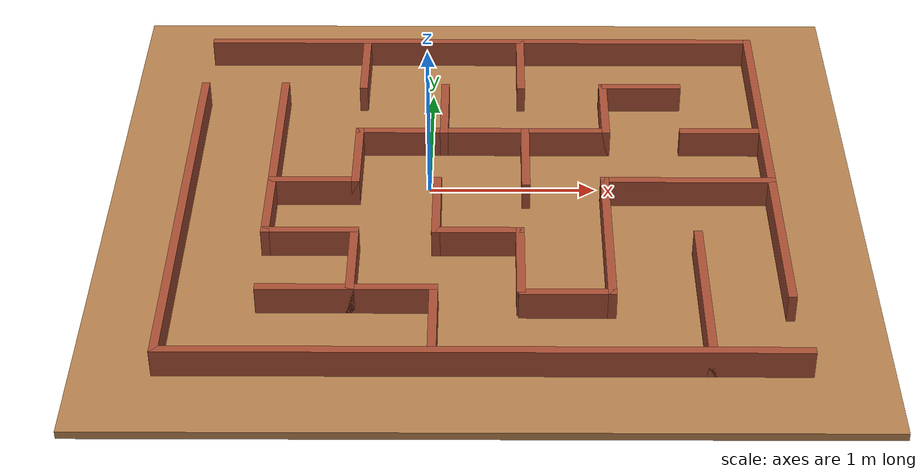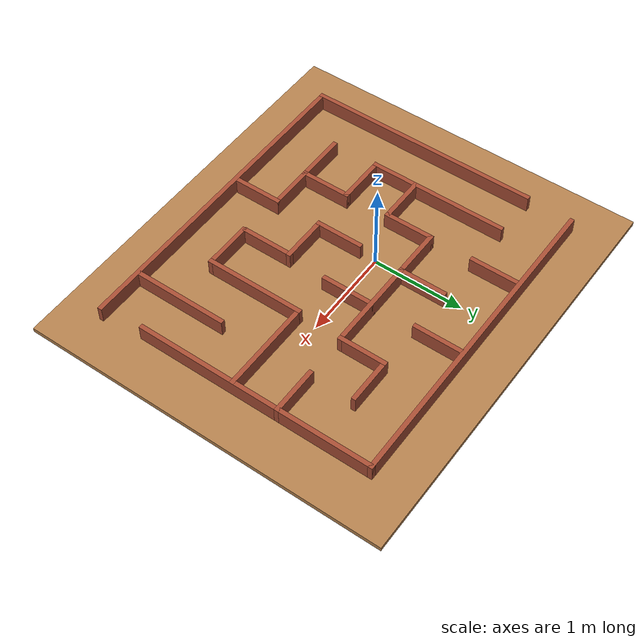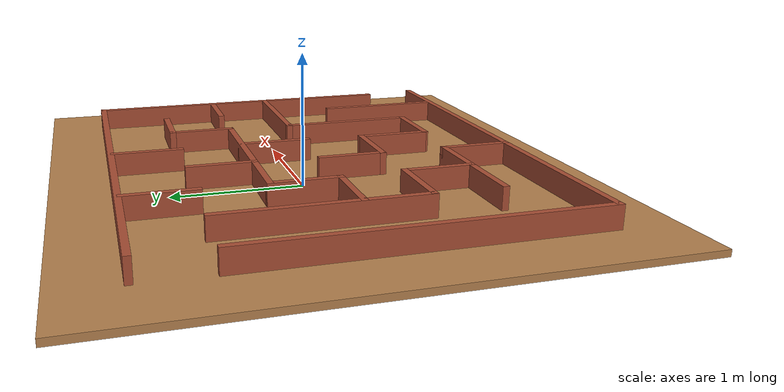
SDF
<?xml version='1.0'?>
<sdf version='1.6'>
  <model name='maze2'>
    <pose frame=''>0.325 -0.165 0 0 -0 0</pose>
    <link name='ground_link'>
      <collision name='ground_collision'>
        <geometry>
          <box>
            <size>4.5 4 0.05</size>
          </box>
        </geometry>
        <surface>
          <friction>
            <ode>
              <mu>100</mu>
              <mu2>50</mu2>
            </ode>
          </friction>
        </surface>
      </collision>
      <visual name='ground_visual'>
        <geometry>
          <box>
            <size>4.5 4 0.05</size>
          </box>
        </geometry>
        <material>
          <script>
            <uri>file://media/materials/scripts/gazebo.material</uri>
            <name>Gazebo/Wood</name>
          </script>
        </material>
      </visual>
    </link>
    <link name='Wall_0'>
      <collision name='Wall_0_Collision'>
        <geometry>
          <box>
            <size>3.53 0.05 0.2</size>
          </box>
        </geometry>
        <pose frame=''>0 0 0.1 0 -0 0</pose>
      </collision>
      <visual name='Wall_0_Visual'>
        <pose frame=''>0 0 0.1 0 -0 0</pose>
        <geometry>
          <box>
            <size>3.53 0.05 0.2</size>
          </box>
        </geometry>
        <material>
          <script>
            <uri>file://media/materials/scripts/gazebo.material</uri>
            <name>Gazebo/Bricks</name>
          </script>
          <ambient>1 1 1 1</ambient>
        </material>
        <meta>
          <layer>0</layer>
        </meta>
      </visual>
      <pose frame=''>-0.015 1.535 0 0 -0 0</pose>
    </link>
    <link name='Wall_10'>
      <collision name='Wall_10_Collision'>
        <geometry>
          <box>
            <size>0.57 0.05 0.2</size>
          </box>
        </geometry>
        <pose frame=''>0 0 0.1 0 -0 0</pose>
      </collision>
      <visual name='Wall_10_Visual'>
        <pose frame=''>0 0 0.1 0 -0 0</pose>
        <geometry>
          <box>
            <size>0.57 0.05 0.2</size>
          </box>
        </geometry>
        <material>
          <script>
            <uri>file://media/materials/scripts/gazebo.material</uri>
            <name>Gazebo/Bricks</name>
          </script>
          <ambient>1 1 1 1</ambient>
        </material>
        <meta>
          <layer>0</layer>
        </meta>
      </visual>
      <pose frame=''>-0.745 -0.745 0 0 -0 -1.5708</pose>
    </link>
    <link name='Wall_11'>
      <collision name='Wall_11_Collision'>
        <geometry>
          <box>
            <size>0.52 0.05 0.2</size>
          </box>
        </geometry>
        <pose frame=''>0 0 0.1 0 -0 0</pose>
      </collision>
      <visual name='Wall_11_Visual'>
        <pose frame=''>0 0 0.1 0 -0 0</pose>
        <geometry>
          <box>
            <size>0.52 0.05 0.2</size>
          </box>
        </geometry>
        <material>
          <script>
            <uri>file://media/materials/scripts/gazebo.material</uri>
            <name>Gazebo/Bricks</name>
          </script>
          <ambient>1 1 1 1</ambient>
        </material>
        <meta>
          <layer>0</layer>
        </meta>
      </visual>
      <pose frame=''>-0.51 -1.005 0 0 -0 0</pose>
    </link>
    <link name='Wall_12'>
      <collision name='Wall_12_Collision'>
        <geometry>
          <box>
            <size>0.58 0.05 0.2</size>
          </box>
        </geometry>
        <pose frame=''>0 0 0.1 0 -0 0</pose>
      </collision>
      <visual name='Wall_12_Visual'>
        <pose frame=''>0 0 0.1 0 -0 0</pose>
        <geometry>
          <box>
            <size>0.58 0.05 0.2</size>
          </box>
        </geometry>
        <material>
          <script>
            <uri>file://media/materials/scripts/gazebo.material</uri>
            <name>Gazebo/Bricks</name>
          </script>
          <ambient>1 1 1 1</ambient>
        </material>
        <meta>
          <layer>0</layer>
        </meta>
      </visual>
      <pose frame=''>-0.275 -1.27 0 0 -0 -1.5708</pose>
    </link>
    <link name='Wall_15'>
      <collision name='Wall_15_Collision'>
        <geometry>
          <box>
            <size>0.56 0.05 0.2</size>
          </box>
        </geometry>
        <pose frame=''>0 0 0.1 0 -0 0</pose>
      </collision>
      <visual name='Wall_15_Visual'>
        <pose frame=''>0 0 0.1 0 -0 0</pose>
        <geometry>
          <box>
            <size>0.56 0.05 0.2</size>
          </box>
        </geometry>
        <material>
          <script>
            <uri>file://media/materials/scripts/gazebo.material</uri>
            <name>Gazebo/Bricks</name>
          </script>
          <ambient>1 1 1 1</ambient>
        </material>
        <meta>
          <layer>0</layer>
        </meta>
      </visual>
      <pose frame=''>-1 -1.005 0 0 -0 0</pose>
    </link>
    <link name='Wall_17'>
      <collision name='Wall_17_Collision'>
        <geometry>
          <box>
            <size>1.57 0.05 0.2</size>
          </box>
        </geometry>
        <pose frame=''>0 0 0.1 0 -0 0</pose>
      </collision>
      <visual name='Wall_17_Visual'>
        <pose frame=''>0 0 0.1 0 -0 0</pose>
        <geometry>
          <box>
            <size>1.57 0.05 0.2</size>
          </box>
        </geometry>
        <material>
          <script>
            <uri>file://media/materials/scripts/gazebo.material</uri>
            <name>Gazebo/Bricks</name>
          </script>
          <ambient>1 1 1 1</ambient>
        </material>
        <meta>
          <layer>0</layer>
        </meta>
      </visual>
      <pose frame=''>-0.005 0.515 0 0 -0 0</pose>
    </link>
    <link name='Wall_2'>
      <collision name='Wall_2_Collision'>
        <geometry>
          <box>
            <size>2.6 0.05 0.2</size>
          </box>
        </geometry>
        <pose frame=''>0 0 0.1 0 -0 0</pose>
      </collision>
      <visual name='Wall_2_Visual'>
        <pose frame=''>0 0 0.1 0 -0 0</pose>
        <geometry>
          <box>
            <size>2.6 0.05 0.2</size>
          </box>
        </geometry>
        <material>
          <script>
            <uri>file://media/materials/scripts/gazebo.material</uri>
            <name>Gazebo/Bricks</name>
          </script>
          <ambient>1 1 1 1</ambient>
        </material>
        <meta>
          <layer>0</layer>
        </meta>
      </visual>
      <pose frame=''>-1.775 -0.26 0 0 -0 -1.5708</pose>
    </link>
    <link name='Wall_20'>
      <collision name='Wall_20_Collision'>
        <geometry>
          <box>
            <size>0.56 0.05 0.2</size>
          </box>
        </geometry>
        <pose frame=''>0 0 0.1 0 -0 0</pose>
      </collision>
      <visual name='Wall_20_Visual'>
        <pose frame=''>0 0 0.1 0 -0 0</pose>
        <geometry>
          <box>
            <size>0.56 0.05 0.2</size>
          </box>
        </geometry>
        <material>
          <script>
            <uri>file://media/materials/scripts/gazebo.material</uri>
            <name>Gazebo/Bricks</name>
          </script>
          <ambient>1 1 1 1</ambient>
        </material>
        <meta>
          <layer>0</layer>
        </meta>
      </visual>
      <pose frame=''>-0.765 0.26 0 0 -0 1.5708</pose>
    </link>
    <link name='Wall_22'>
      <collision name='Wall_22_Collision'>
        <geometry>
          <box>
            <size>0.55 0.05 0.2</size>
          </box>
        </geometry>
        <pose frame=''>0 0 0.1 0 -0 0</pose>
      </collision>
      <visual name='Wall_22_Visual'>
        <pose frame=''>0 0 0.1 0 -0 0</pose>
        <geometry>
          <box>
            <size>0.55 0.05 0.2</size>
          </box>
        </geometry>
        <material>
          <script>
            <uri>file://media/materials/scripts/gazebo.material</uri>
            <name>Gazebo/Bricks</name>
          </script>
          <ambient>1 1 1 1</ambient>
        </material>
        <meta>
          <layer>0</layer>
        </meta>
      </visual>
      <pose frame=''>-1.015 0.005 0 0 -0 0</pose>
    </link>
    <link name='Wall_24'>
      <collision name='Wall_24_Collision'>
        <geometry>
          <box>
            <size>0.54 0.05 0.2</size>
          </box>
        </geometry>
        <pose frame=''>0 0 0.1 0 -0 0</pose>
      </collision>
      <visual name='Wall_24_Visual'>
        <pose frame=''>0 0 0.1 0 -0 0</pose>
        <geometry>
          <box>
            <size>0.54 0.05 0.2</size>
          </box>
        </geometry>
        <material>
          <script>
            <uri>file://media/materials/scripts/gazebo.material</uri>
            <name>Gazebo/Bricks</name>
          </script>
          <ambient>1 1 1 1</ambient>
        </material>
        <meta>
          <layer>0</layer>
        </meta>
      </visual>
      <pose frame=''>0.755 0.76 0 0 -0 -1.5708</pose>
    </link>
    <link name='Wall_26'>
      <collision name='Wall_26_Collision'>
        <geometry>
          <box>
            <size>0.520106 0.05 0.2</size>
          </box>
        </geometry>
        <pose frame=''>0 0 0.1 0 -0 0</pose>
      </collision>
      <visual name='Wall_26_Visual'>
        <pose frame=''>0 0 0.1 0 -0 0</pose>
        <geometry>
          <box>
            <size>0.520106 0.05 0.2</size>
          </box>
        </geometry>
        <material>
          <script>
            <uri>file://media/materials/scripts/gazebo.material</uri>
            <name>Gazebo/Bricks</name>
          </script>
          <ambient>1 1 1 1</ambient>
        </material>
        <meta>
          <layer>0</layer>
        </meta>
      </visual>
      <pose frame=''>0.99 1.005 0 0 -0 3.14159</pose>
    </link>
    <link name='Wall_28'>
      <collision name='Wall_28_Collision'>
        <geometry>
          <box>
            <size>0.59 0.05 0.2</size>
          </box>
        </geometry>
        <pose frame=''>0 0 0.1 0 -0 0</pose>
      </collision>
      <visual name='Wall_28_Visual'>
        <pose frame=''>0 0 0.1 0 -0 0</pose>
        <geometry>
          <box>
            <size>0.59 0.05 0.2</size>
          </box>
        </geometry>
        <material>
          <script>
            <uri>file://media/materials/scripts/gazebo.material</uri>
            <name>Gazebo/Bricks</name>
          </script>
          <ambient>1 1 1 1</ambient>
        </material>
        <meta>
          <layer>0</layer>
        </meta>
      </visual>
      <pose frame=''>0.255 0.245 0 0 -0 1.5708</pose>
    </link>
    <link name='Wall_3'>
      <collision name='Wall_3_Collision'>
        <geometry>
          <box>
            <size>3.6 0.05 0.2</size>
          </box>
        </geometry>
        <pose frame=''>0 0 0.1 0 -0 0</pose>
      </collision>
      <visual name='Wall_3_Visual'>
        <pose frame=''>0 0 0.1 0 -0 0</pose>
        <geometry>
          <box>
            <size>3.6 0.05 0.2</size>
          </box>
        </geometry>
        <material>
          <script>
            <uri>file://media/materials/scripts/gazebo.material</uri>
            <name>Gazebo/Bricks</name>
          </script>
          <ambient>1 1 1 1</ambient>
        </material>
        <meta>
          <layer>0</layer>
        </meta>
      </visual>
      <pose frame=''>0 -1.535 0 0 -0 0</pose>
    </link>
    <link name='Wall_30'>
      <collision name='Wall_30_Collision'>
        <geometry>
          <box>
            <size>0.56 0.05 0.2</size>
          </box>
        </geometry>
        <pose frame=''>0 0 0.1 0 -0 0</pose>
      </collision>
      <visual name='Wall_30_Visual'>
        <pose frame=''>0 0 0.1 0 -0 0</pose>
        <geometry>
          <box>
            <size>0.56 0.05 0.2</size>
          </box>
        </geometry>
        <material>
          <script>
            <uri>file://media/materials/scripts/gazebo.material</uri>
            <name>Gazebo/Bricks</name>
          </script>
          <ambient>1 1 1 1</ambient>
        </material>
        <meta>
          <layer>0</layer>
        </meta>
      </visual>
      <pose frame=''>-0.765 1.26 0 0 -0 1.5708</pose>
    </link>
    <link name='Wall_32'>
      <collision name='Wall_32_Collision'>
        <geometry>
          <box>
            <size>0.56 0.05 0.2</size>
          </box>
        </geometry>
        <pose frame=''>0 0 0.1 0 -0 0</pose>
      </collision>
      <visual name='Wall_32_Visual'>
        <pose frame=''>0 0 0.1 0 -0 0</pose>
        <geometry>
          <box>
            <size>0.56 0.05 0.2</size>
          </box>
        </geometry>
        <material>
          <script>
            <uri>file://media/materials/scripts/gazebo.material</uri>
            <name>Gazebo/Bricks</name>
          </script>
          <ambient>1 1 1 1</ambient>
        </material>
        <meta>
          <layer>0</layer>
        </meta>
      </visual>
      <pose frame=''>0.235 1.26 0 0 -0 1.5708</pose>
    </link>
    <link name='Wall_35'>
      <collision name='Wall_35_Collision'>
        <geometry>
          <box>
            <size>0.54 0.05 0.2</size>
          </box>
        </geometry>
        <pose frame=''>0 0 0.1 0 -0 0</pose>
      </collision>
      <visual name='Wall_35_Visual'>
        <pose frame=''>0 0 0.1 0 -0 0</pose>
        <geometry>
          <box>
            <size>0.54 0.05 0.2</size>
          </box>
        </geometry>
        <material>
          <script>
            <uri>file://media/materials/scripts/gazebo.material</uri>
            <name>Gazebo/Bricks</name>
          </script>
          <ambient>1 1 1 1</ambient>
        </material>
        <meta>
          <layer>0</layer>
        </meta>
      </visual>
      <pose frame=''>-0.245 0.76 0 0 -0 -1.5708</pose>
    </link>
    <link name='Wall_37'>
      <collision name='Wall_37_Collision'>
        <geometry>
          <box>
            <size>0.54 0.05 0.2</size>
          </box>
        </geometry>
        <pose frame=''>0 0 0.1 0 -0 0</pose>
      </collision>
      <visual name='Wall_37_Visual'>
        <pose frame=''>0 0 0.1 0 -0 0</pose>
        <geometry>
          <box>
            <size>0.54 0.05 0.2</size>
          </box>
        </geometry>
        <material>
          <script>
            <uri>file://media/materials/scripts/gazebo.material</uri>
            <name>Gazebo/Bricks</name>
          </script>
          <ambient>1 1 1 1</ambient>
        </material>
        <meta>
          <layer>0</layer>
        </meta>
      </visual>
      <pose frame=''>1.48 0.515 0 0 -0 0</pose>
    </link>
    <link name='Wall_39'>
      <collision name='Wall_39_Collision'>
        <geometry>
          <box>
            <size>0.54 0.05 0.2</size>
          </box>
        </geometry>
        <pose frame=''>0 0 0.1 0 -0 0</pose>
      </collision>
      <visual name='Wall_39_Visual'>
        <pose frame=''>0 0 0.1 0 -0 0</pose>
        <geometry>
          <box>
            <size>0.54 0.05 0.2</size>
          </box>
        </geometry>
        <material>
          <script>
            <uri>file://media/materials/scripts/gazebo.material</uri>
            <name>Gazebo/Bricks</name>
          </script>
          <ambient>1 1 1 1</ambient>
        </material>
        <meta>
          <layer>0</layer>
        </meta>
      </visual>
      <pose frame=''>-0.275 -0.24 0 0 -0 -1.5708</pose>
    </link>
    <link name='Wall_42'>
      <collision name='Wall_42_Collision'>
        <geometry>
          <box>
            <size>0.540408 0.05 0.2</size>
          </box>
        </geometry>
        <pose frame=''>0 0 0.1 0 -0 0</pose>
      </collision>
      <visual name='Wall_42_Visual'>
        <pose frame=''>0 0 0.1 0 -0 0</pose>
        <geometry>
          <box>
            <size>0.540408 0.05 0.2</size>
          </box>
        </geometry>
        <material>
          <script>
            <uri>file://media/materials/scripts/gazebo.material</uri>
            <name>Gazebo/Bricks</name>
          </script>
          <ambient>1 1 1 1</ambient>
        </material>
        <meta>
          <layer>0</layer>
        </meta>
      </visual>
      <pose frame=''>-0.03 -0.485 0 0 -0 3.14159</pose>
    </link>
    <link name='Wall_44'>
      <collision name='Wall_44_Collision'>
        <geometry>
          <box>
            <size>0.59 0.05 0.2</size>
          </box>
        </geometry>
        <pose frame=''>0 0 0.1 0 -0 0</pose>
      </collision>
      <visual name='Wall_44_Visual'>
        <pose frame=''>0 0 0.1 0 -0 0</pose>
        <geometry>
          <box>
            <size>0.59 0.05 0.2</size>
          </box>
        </geometry>
        <material>
          <script>
            <uri>file://media/materials/scripts/gazebo.material</uri>
            <name>Gazebo/Bricks</name>
          </script>
          <ambient>1 1 1 1</ambient>
        </material>
        <meta>
          <layer>0</layer>
        </meta>
      </visual>
      <pose frame=''>0.215 -0.755 0 0 -0 1.5708</pose>
    </link>
    <link name='Wall_47'>
      <collision name='Wall_47_Collision'>
        <geometry>
          <box>
            <size>0.55 0.05 0.2</size>
          </box>
        </geometry>
        <pose frame=''>0 0 0.1 0 -0 0</pose>
      </collision>
      <visual name='Wall_47_Visual'>
        <pose frame=''>0 0 0.1 0 -0 0</pose>
        <geometry>
          <box>
            <size>0.55 0.05 0.2</size>
          </box>
        </geometry>
        <material>
          <script>
            <uri>file://media/materials/scripts/gazebo.material</uri>
            <name>Gazebo/Bricks</name>
          </script>
          <ambient>1 1 1 1</ambient>
        </material>
        <meta>
          <layer>0</layer>
        </meta>
      </visual>
      <pose frame=''>0.475 -1.045 0 0 -0 0</pose>
    </link>
    <link name='Wall_49'>
      <collision name='Wall_49_Collision'>
        <geometry>
          <box>
            <size>1.10043 0.05 0.2</size>
          </box>
        </geometry>
        <pose frame=''>0 0 0.1 0 -0 0</pose>
      </collision>
      <visual name='Wall_49_Visual'>
        <pose frame=''>0 0 0.1 0 -0 0</pose>
        <geometry>
          <box>
            <size>1.10043 0.05 0.2</size>
          </box>
        </geometry>
        <material>
          <script>
            <uri>file://media/materials/scripts/gazebo.material</uri>
            <name>Gazebo/Bricks</name>
          </script>
          <ambient>1 1 1 1</ambient>
        </material>
        <meta>
          <layer>0</layer>
        </meta>
      </visual>
      <pose frame=''>0.725 -0.52 0 0 -0 -1.5708</pose>
    </link>
    <link name='Wall_5'>
      <collision name='Wall_5_Collision'>
        <geometry>
          <box>
            <size>2.65 0.05 0.2</size>
          </box>
        </geometry>
        <pose frame=''>0 0 0.1 0 -0 0</pose>
      </collision>
      <visual name='Wall_5_Visual'>
        <pose frame=''>0 0 0.1 0 -0 0</pose>
        <geometry>
          <box>
            <size>2.65 0.05 0.2</size>
          </box>
        </geometry>
        <material>
          <script>
            <uri>file://media/materials/scripts/gazebo.material</uri>
            <name>Gazebo/Bricks</name>
          </script>
          <ambient>1 1 1 1</ambient>
        </material>
        <meta>
          <layer>0</layer>
        </meta>
      </visual>
      <pose frame=''>1.725 0.235 0 0 -0 1.5708</pose>
    </link>
    <link name='Wall_51'>
      <collision name='Wall_51_Collision'>
        <geometry>
          <box>
            <size>1.07 0.05 0.2</size>
          </box>
        </geometry>
        <pose frame=''>0 0 0.1 0 -0 0</pose>
      </collision>
      <visual name='Wall_51_Visual'>
        <pose frame=''>0 0 0.1 0 -0 0</pose>
        <geometry>
          <box>
            <size>1.07 0.05 0.2</size>
          </box>
        </geometry>
        <material>
          <script>
            <uri>file://media/materials/scripts/gazebo.material</uri>
            <name>Gazebo/Bricks</name>
          </script>
          <ambient>1 1 1 1</ambient>
        </material>
        <meta>
          <layer>0</layer>
        </meta>
      </visual>
      <pose frame=''>1.245 -1.025 0 0 -0 -1.5708</pose>
    </link>
    <link name='Wall_53'>
      <collision name='Wall_53_Collision'>
        <geometry>
          <box>
            <size>1.05 0.05 0.2</size>
          </box>
        </geometry>
        <pose frame=''>0 0 0.1 0 -0 0</pose>
      </collision>
      <visual name='Wall_53_Visual'>
        <pose frame=''>0 0 0.1 0 -0 0</pose>
        <geometry>
          <box>
            <size>1.05 0.05 0.2</size>
          </box>
        </geometry>
        <material>
          <script>
            <uri>file://media/materials/scripts/gazebo.material</uri>
            <name>Gazebo/Bricks</name>
          </script>
          <ambient>1 1 1 1</ambient>
        </material>
        <meta>
          <layer>0</layer>
        </meta>
      </visual>
      <pose frame=''>1.225 0.005 0 0 -0 0</pose>
    </link>
    <link name='Wall_7'>
      <collision name='Wall_7_Collision'>
        <geometry>
          <box>
            <size>1.55 0.05 0.2</size>
          </box>
        </geometry>
        <pose frame=''>0 0 0.1 0 -0 0</pose>
      </collision>
      <visual name='Wall_7_Visual'>
        <pose frame=''>0 0 0.1 0 -0 0</pose>
        <geometry>
          <box>
            <size>1.55 0.05 0.2</size>
          </box>
        </geometry>
        <material>
          <script>
            <uri>file://media/materials/scripts/gazebo.material</uri>
            <name>Gazebo/Bricks</name>
          </script>
          <ambient>1 1 1 1</ambient>
        </material>
        <meta>
          <layer>0</layer>
        </meta>
      </visual>
      <pose frame=''>-1.265 0.265 0 0 -0 -1.5708</pose>
    </link>
    <link name='Wall_9'>
      <collision name='Wall_9_Collision'>
        <geometry>
          <box>
            <size>0.56 0.05 0.2</size>
          </box>
        </geometry>
        <pose frame=''>0 0 0.1 0 -0 0</pose>
      </collision>
      <visual name='Wall_9_Visual'>
        <pose frame=''>0 0 0.1 0 -0 0</pose>
        <geometry>
          <box>
            <size>0.56 0.05 0.2</size>
          </box>
        </geometry>
        <material>
          <script>
            <uri>file://media/materials/scripts/gazebo.material</uri>
            <name>Gazebo/Bricks</name>
          </script>
          <ambient>1 1 1 1</ambient>
        </material>
        <meta>
          <layer>0</layer>
        </meta>
      </visual>
      <pose frame=''>-1 -0.485 0 0 -0 0</pose>
    </link>
    <static>1</static>
  </model>
</sdf>
